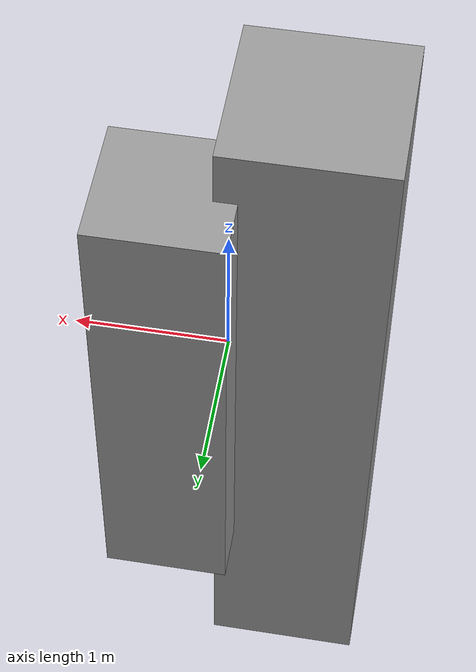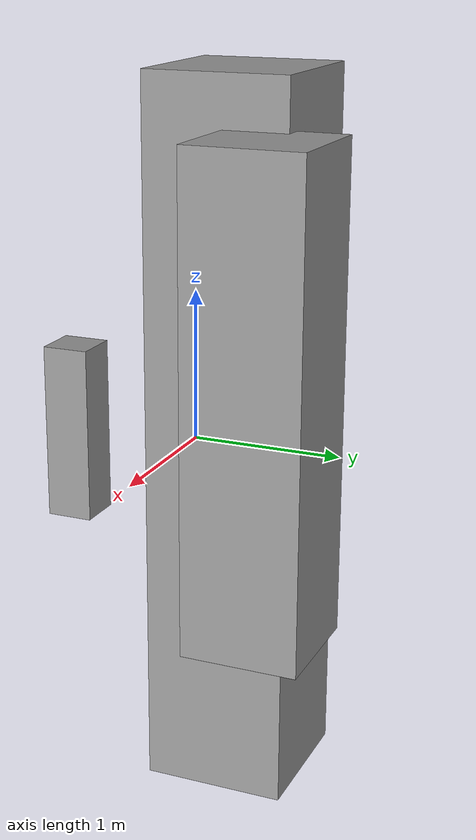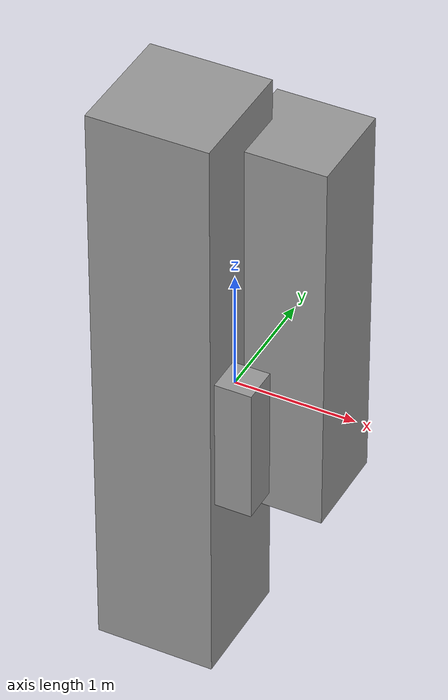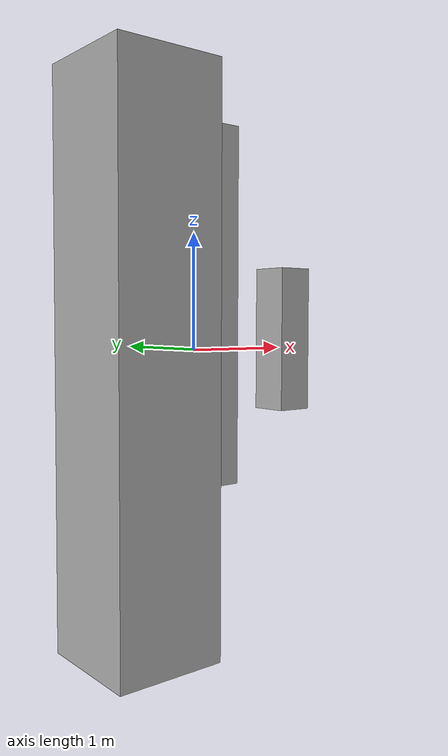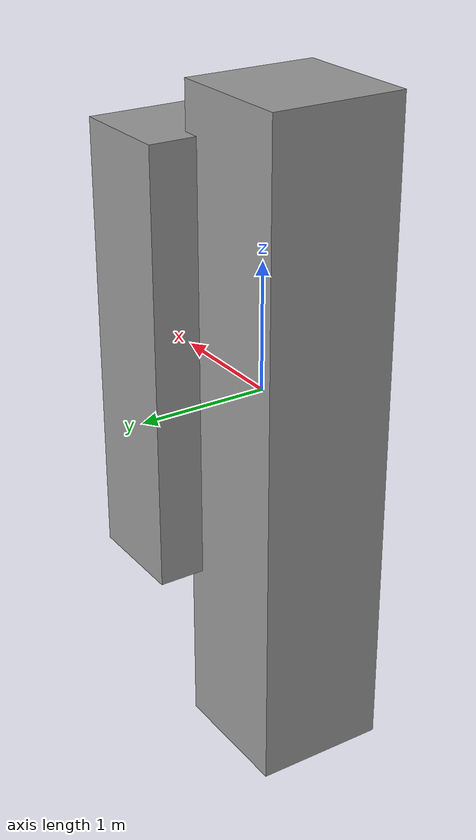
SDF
<?xml version='1.0'?>
<sdf version='1.7'>
  <model name='podstavka_dlya_dozatorov'>
    <link name='podstavka_concrete_mixer'>
      <inertial>
        <mass>1</mass>
        <inertia>
          <ixx>0.166667</ixx>
          <ixy>0</ixy>
          <ixz>0</ixz>
          <iyy>0.166667</iyy>
          <iyz>0</iyz>
          <izz>0.166667</izz>
        </inertia>
        <pose>0 0 0 0 -0 0</pose>
      </inertial>
      <pose>0.399681 -0.669284 0.1 0 -0 0</pose>
      <gravity>1</gravity>
      <self_collide>0</self_collide>
      <kinematic>0</kinematic>
      <enable_wind>0</enable_wind>
      <visual name='visual'>
        <pose>0 0 0 0 -0 0</pose>
        <geometry>
          <box>
            <size>0.3 0.3 1.145</size>
          </box>
        </geometry>
        <material>
          <lighting>1</lighting>
          <script>
            <uri>file://media/materials/scripts/gazebo.material</uri>
            <name>Gazebo/Grey</name>
          </script>
          <shader type='pixel'>
            <normal_map>__default__</normal_map>
          </shader>
          <ambient>0.3 0.3 0.3 1</ambient>
          <diffuse>0.7 0.7 0.7 1</diffuse>
          <specular>0.01 0.01 0.01 1</specular>
          <emissive>0 0 0 1</emissive>
        </material>
        <transparency>0</transparency>
        <cast_shadows>1</cast_shadows>
      </visual>
      <collision name='collision'>
        <laser_retro>0</laser_retro>
        <max_contacts>10</max_contacts>
        <pose>0 0 0 0 -0 0</pose>
        <geometry>
          <box>
            <size>0.3 0.3 1.145</size>
          </box>
        </geometry>
        <surface>
          <friction>
            <ode>
              <mu>1</mu>
              <mu2>1</mu2>
              <fdir1>0 0 0</fdir1>
              <slip1>0</slip1>
              <slip2>0</slip2>
            </ode>
            <torsional>
              <coefficient>1</coefficient>
              <patch_radius>0</patch_radius>
              <surface_radius>0</surface_radius>
              <use_patch_radius>1</use_patch_radius>
              <ode>
                <slip>0</slip>
              </ode>
            </torsional>
          </friction>
          <bounce>
            <restitution_coefficient>0</restitution_coefficient>
            <threshold>1e+06</threshold>
          </bounce>
          <contact>
            <collide_without_contact>0</collide_without_contact>
            <collide_without_contact_bitmask>1</collide_without_contact_bitmask>
            <collide_bitmask>1</collide_bitmask>
            <ode>
              <soft_cfm>0</soft_cfm>
              <soft_erp>0.2</soft_erp>
              <kp>1e+13</kp>
              <kd>1</kd>
              <max_vel>0.01</max_vel>
              <min_depth>0</min_depth>
            </ode>
            <bullet>
              <split_impulse>1</split_impulse>
              <split_impulse_penetration_threshold>-0.01</split_impulse_penetration_threshold>
              <soft_cfm>0</soft_cfm>
              <soft_erp>0.2</soft_erp>
              <kp>1e+13</kp>
              <kd>1</kd>
            </bullet>
          </contact>
        </surface>
      </collision>
    </link>
    <link name='feeder_sand_cement'>
      <inertial>
        <mass>1</mass>
        <inertia>
          <ixx>0.166667</ixx>
          <ixy>0</ixy>
          <ixz>0</ixz>
          <iyy>0.166667</iyy>
          <iyz>0</iyz>
          <izz>0.166667</izz>
        </inertia>
        <pose>0 0 0 0 -0 0</pose>
      </inertial>
      <pose>-0.511296 0.118602 -0.125 0 -0 0</pose>
      <self_collide>0</self_collide>
      <enable_wind>0</enable_wind>
      <kinematic>0</kinematic>
      <visual name='visual'>
        <pose>0 0 0 0 -0 0</pose>
        <geometry>
          <box>
            <size>1 1 5</size>
          </box>
        </geometry>
        <material>
          <lighting>1</lighting>
          <script>
            <uri>file://media/materials/scripts/gazebo.material</uri>
            <name>Gazebo/Grey</name>
          </script>
          <shader type='pixel'/>
        </material>
        <transparency>0</transparency>
        <cast_shadows>1</cast_shadows>
      </visual>
      <collision name='collision'>
        <laser_retro>0</laser_retro>
        <max_contacts>10</max_contacts>
        <pose>0 0 0 0 -0 0</pose>
        <geometry>
          <box>
            <size>1 1 1</size>
          </box>
        </geometry>
        <surface>
          <friction>
            <ode>
              <mu>1</mu>
              <mu2>1</mu2>
              <fdir1>0 0 0</fdir1>
              <slip1>0</slip1>
              <slip2>0</slip2>
            </ode>
            <torsional>
              <coefficient>1</coefficient>
              <patch_radius>0</patch_radius>
              <surface_radius>0</surface_radius>
              <use_patch_radius>1</use_patch_radius>
              <ode>
                <slip>0</slip>
              </ode>
            </torsional>
          </friction>
          <bounce>
            <restitution_coefficient>0</restitution_coefficient>
            <threshold>1e+06</threshold>
          </bounce>
          <contact>
            <collide_without_contact>0</collide_without_contact>
            <collide_without_contact_bitmask>1</collide_without_contact_bitmask>
            <collide_bitmask>1</collide_bitmask>
            <ode>
              <soft_cfm>0</soft_cfm>
              <soft_erp>0.2</soft_erp>
              <kp>1e+13</kp>
              <kd>1</kd>
              <max_vel>0.01</max_vel>
              <min_depth>0</min_depth>
            </ode>
            <bullet>
              <split_impulse>1</split_impulse>
              <split_impulse_penetration_threshold>-0.01</split_impulse_penetration_threshold>
              <soft_cfm>0</soft_cfm>
              <soft_erp>0.2</soft_erp>
              <kp>1e+13</kp>
              <kd>1</kd>
            </bullet>
          </contact>
        </surface>
      </collision>
    </link>
    <link name='feeder_rubble'>
      <inertial>
        <mass>1</mass>
        <inertia>
          <ixx>0.166667</ixx>
          <ixy>0</ixy>
          <ixz>0</ixz>
          <iyy>0.166667</iyy>
          <iyz>0</iyz>
          <izz>0.166667</izz>
        </inertia>
        <pose>0 0 0 0 -0 0</pose>
      </inertial>
      <pose>0.25243 0.57005 0.375 0 -0 0</pose>
      <gravity>1</gravity>
      <self_collide>0</self_collide>
      <kinematic>0</kinematic>
      <enable_wind>0</enable_wind>
      <visual name='visual'>
        <pose>0 0 0 0 -0 0</pose>
        <geometry>
          <box>
            <size>0.8 0.8 3.3</size>
          </box>
        </geometry>
        <material>
          <lighting>1</lighting>
          <script>
            <uri>file://media/materials/scripts/gazebo.material</uri>
            <name>Gazebo/Grey</name>
          </script>
          <shader type='pixel'>
            <normal_map>__default__</normal_map>
          </shader>
          <ambient>0.3 0.3 0.3 1</ambient>
          <diffuse>0.7 0.7 0.7 1</diffuse>
          <specular>0.01 0.01 0.01 1</specular>
          <emissive>0 0 0 1</emissive>
        </material>
        <transparency>0</transparency>
        <cast_shadows>1</cast_shadows>
      </visual>
      <collision name='collision'>
        <laser_retro>0</laser_retro>
        <max_contacts>10</max_contacts>
        <pose>0 0 0 0 -0 0</pose>
        <geometry>
          <box>
            <size>0.8 0.8 2</size>
          </box>
        </geometry>
        <surface>
          <friction>
            <ode>
              <mu>1</mu>
              <mu2>1</mu2>
              <fdir1>0 0 0</fdir1>
              <slip1>0</slip1>
              <slip2>0</slip2>
            </ode>
            <torsional>
              <coefficient>1</coefficient>
              <patch_radius>0</patch_radius>
              <surface_radius>0</surface_radius>
              <use_patch_radius>1</use_patch_radius>
              <ode>
                <slip>0</slip>
              </ode>
            </torsional>
          </friction>
          <bounce>
            <restitution_coefficient>0</restitution_coefficient>
            <threshold>1e+06</threshold>
          </bounce>
          <contact>
            <collide_without_contact>0</collide_without_contact>
            <collide_without_contact_bitmask>1</collide_without_contact_bitmask>
            <collide_bitmask>1</collide_bitmask>
            <ode>
              <soft_cfm>0</soft_cfm>
              <soft_erp>0.2</soft_erp>
              <kp>1e+13</kp>
              <kd>1</kd>
              <max_vel>0.01</max_vel>
              <min_depth>0</min_depth>
            </ode>
            <bullet>
              <split_impulse>1</split_impulse>
              <split_impulse_penetration_threshold>-0.01</split_impulse_penetration_threshold>
              <soft_cfm>0</soft_cfm>
              <soft_erp>0.2</soft_erp>
              <kp>1e+13</kp>
              <kd>1</kd>
            </bullet>
          </contact>
        </surface>
      </collision>
    </link>
    <static>0</static>
    <allow_auto_disable>1</allow_auto_disable>
  </model>
</sdf>
